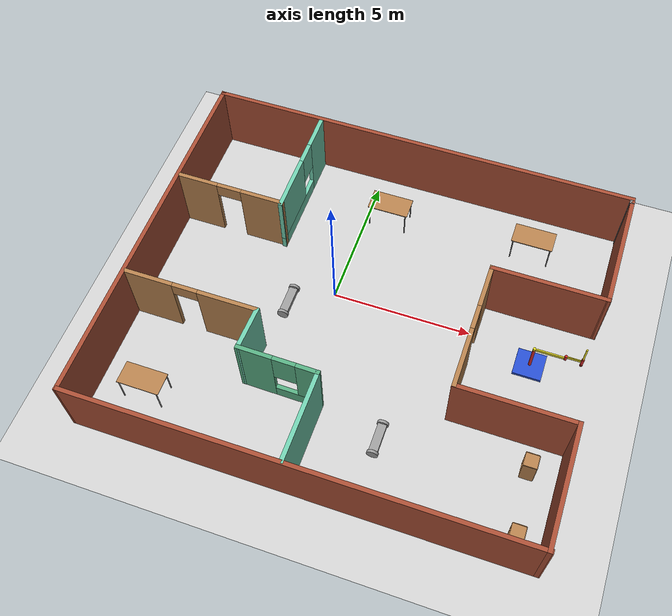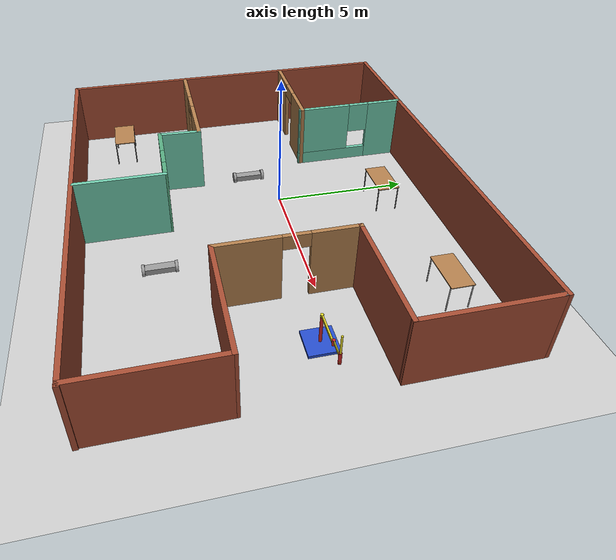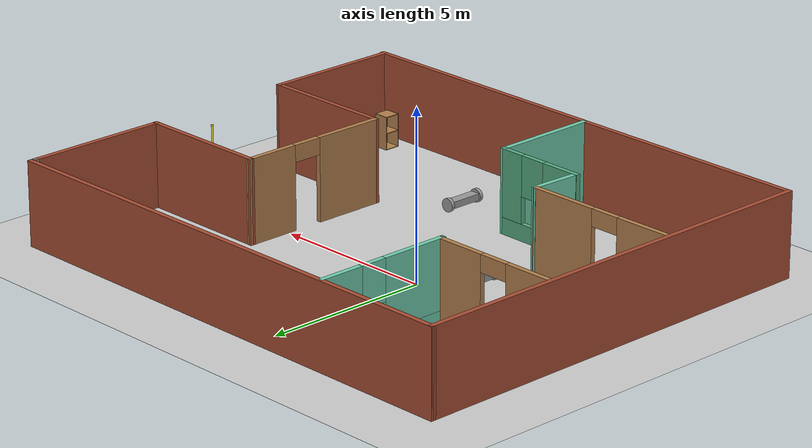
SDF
<sdf version="1.6">
 <world name="default">
  <plugin name="Welcome" filename="libWelcome.so"/>
  <light name="sun" type="directional">
   <pose>0 0 10 0 -0 0</pose>
   <diffuse>0.8 0.8 0.8 1</diffuse>
   <specular>0.2 0.2 0.2 1</specular>
   <attenuation>
    <range>1000</range>
    <constant>0.9</constant>
    <linear>0.01</linear>
    <quadratic>0.001</quadratic>
   </attenuation>
   <direction>-0.5 0.1 -0.9</direction>
  </light>
  <model name="ground_plane">
   <static>1</static>
   <link name="link">
    <collision name="collision">
     <geometry><plane><normal>0 0 1</normal><size>100 100</size></plane></geometry>
     <surface><friction><ode><mu>100</mu><mu2>50</mu2></ode></friction></surface>
    </collision>
    <visual name="visual">
     <cast_shadows>0</cast_shadows>
     <geometry><plane><normal>0 0 1</normal><size>100 100</size></plane></geometry>
     <material>
      <script><uri>file://media/materials/scripts/gazebo.material</uri><name>Gazebo/Grey</name></script>
     </material>
    </visual>
   </link>
  </model>
  <gravity>0 0 -9.8</gravity>
  <magnetic_field>6e-06 2.3e-05 -4.2e-05</magnetic_field>
  <atmosphere type="adiabatic"/>
  <physics name="default_physics" default="0" type="ode">
   <max_step_size>0.001</max_step_size>
   <real_time_factor>1</real_time_factor>
   <real_time_update_rate>1000</real_time_update_rate>
  </physics>
  <scene><ambient>0.4 0.4 0.4 1</ambient><background>0.7 0.7 0.7 1</background><shadows>1</shadows></scene>
  <spherical_coordinates>
   <surface_model>EARTH_WGS84</surface_model>
   <latitude_deg>0</latitude_deg>
   <longitude_deg>0</longitude_deg>
   <elevation>0</elevation>
   <heading_deg>0</heading_deg>
  </spherical_coordinates>
  <model name="robot">
   <link name="link_0">
    <inertial>
     <mass>1</mass>
     <inertia>
      <ixx>0.166667</ixx>
      <ixy>0</ixy>
      <ixz>0</ixz>
      <iyy>0.166667</iyy>
      <iyz>0</iyz>
      <izz>0.166667</izz>
     </inertia>
    </inertial>
    <visual name="visual">
     <geometry><box><size>0.3 1 0.2</size></box></geometry>
     <material>
      <lighting>1</lighting>
      <script><uri>file://media/materials/scripts/gazebo.material</uri><name>Gazebo/Grey</name></script>
      <ambient>0.3 0.3 0.3 1</ambient>
      <diffuse>0.7 0.7 0.7 1</diffuse>
      <specular>0.01 0.01 0.01 1</specular>
      <emissive>0 0 0 1</emissive>
      <shader type="vertex"><normal_map>__default__</normal_map></shader>
     </material>
    </visual>
    <collision name="collision">
     <geometry><box><size>0.3 1 0.2</size></box></geometry>
     <surface>
      <friction>
       <ode><mu>1</mu><mu2>1</mu2><fdir1>0 0 0</fdir1><slip1>0</slip1><slip2>0</slip2></ode>
       <torsional>
        <coefficient>1</coefficient>
        <patch_radius>0</patch_radius>
        <surface_radius>0</surface_radius>
        <use_patch_radius>1</use_patch_radius>
        <ode><slip>0</slip></ode>
       </torsional>
      </friction>
      <bounce><restitution_coefficient>0</restitution_coefficient><threshold>1e+06</threshold></bounce>
      <contact>
       <collide_without_contact>0</collide_without_contact>
       <collide_without_contact_bitmask>1</collide_without_contact_bitmask>
       <collide_bitmask>1</collide_bitmask>
       <ode>
        <soft_cfm>0</soft_cfm>
        <soft_erp>0.2</soft_erp>
        <kp>1e+13</kp>
        <kd>1</kd>
        <max_vel>0.01</max_vel>
        <min_depth>0</min_depth>
       </ode>
       <bullet>
        <split_impulse>1</split_impulse>
        <split_impulse_penetration_threshold>-0.01</split_impulse_penetration_threshold>
        <soft_cfm>0</soft_cfm>
        <soft_erp>0.2</soft_erp>
        <kp>1e+13</kp>
        <kd>1</kd>
       </bullet>
      </contact>
     </surface>
    </collision>
   </link>
   <link name="link_1">
    <pose>0 -0.550019 0 1.5707 -0 0</pose>
    <inertial>
     <mass>1</mass>
     <inertia><ixx>0.145833</ixx><ixy>0</ixy><ixz>0</ixz><iyy>0.145833</iyy><iyz>0</iyz><izz>0.125</izz></inertia>
    </inertial>
    <visual name="visual">
     <geometry><cylinder><radius>0.2</radius><length>0.1</length></cylinder></geometry>
     <material>
      <lighting>1</lighting>
      <script><uri>file://media/materials/scripts/gazebo.material</uri><name>Gazebo/Grey</name></script>
      <ambient>0.3 0.3 0.3 1</ambient>
      <diffuse>0.7 0.7 0.7 1</diffuse>
      <specular>0.01 0.01 0.01 1</specular>
      <emissive>0 0 0 1</emissive>
      <shader type="vertex"><normal_map>__default__</normal_map></shader>
     </material>
    </visual>
    <collision name="collision">
     <geometry><cylinder><radius>0.2</radius><length>0.1</length></cylinder></geometry>
     <surface>
      <friction>
       <ode><mu>1</mu><mu2>1</mu2><fdir1>0 0 0</fdir1><slip1>0</slip1><slip2>0</slip2></ode>
       <torsional>
        <coefficient>1</coefficient>
        <patch_radius>0</patch_radius>
        <surface_radius>0</surface_radius>
        <use_patch_radius>1</use_patch_radius>
        <ode><slip>0</slip></ode>
       </torsional>
      </friction>
      <bounce><restitution_coefficient>0</restitution_coefficient><threshold>1e+06</threshold></bounce>
      <contact>
       <collide_without_contact>0</collide_without_contact>
       <collide_without_contact_bitmask>1</collide_without_contact_bitmask>
       <collide_bitmask>1</collide_bitmask>
       <ode>
        <soft_cfm>0</soft_cfm>
        <soft_erp>0.2</soft_erp>
        <kp>1e+13</kp>
        <kd>1</kd>
        <max_vel>0.01</max_vel>
        <min_depth>0</min_depth>
       </ode>
       <bullet>
        <split_impulse>1</split_impulse>
        <split_impulse_penetration_threshold>-0.01</split_impulse_penetration_threshold>
        <soft_cfm>0</soft_cfm>
        <soft_erp>0.2</soft_erp>
        <kp>1e+13</kp>
        <kd>1</kd>
       </bullet>
      </contact>
     </surface>
    </collision>
   </link>
   <link name="link_1_clone">
    <pose>0 0.550019 0 1.5707 -0 0</pose>
    <inertial>
     <mass>1</mass>
     <inertia><ixx>0.145833</ixx><ixy>0</ixy><ixz>0</ixz><iyy>0.145833</iyy><iyz>0</iyz><izz>0.125</izz></inertia>
    </inertial>
    <visual name="visual">
     <geometry><cylinder><radius>0.2</radius><length>0.1</length></cylinder></geometry>
     <material>
      <lighting>1</lighting>
      <script><uri>file://media/materials/scripts/gazebo.material</uri><name>Gazebo/Grey</name></script>
      <ambient>0.3 0.3 0.3 1</ambient>
      <diffuse>0.7 0.7 0.7 1</diffuse>
      <specular>0.01 0.01 0.01 1</specular>
      <emissive>0 0 0 1</emissive>
      <shader type="vertex"><normal_map>__default__</normal_map></shader>
     </material>
    </visual>
    <collision name="collision">
     <geometry><cylinder><radius>0.2</radius><length>0.1</length></cylinder></geometry>
     <surface>
      <friction>
       <ode><mu>1</mu><mu2>1</mu2><fdir1>0 0 0</fdir1><slip1>0</slip1><slip2>0</slip2></ode>
       <torsional>
        <coefficient>1</coefficient>
        <patch_radius>0</patch_radius>
        <surface_radius>0</surface_radius>
        <use_patch_radius>1</use_patch_radius>
        <ode><slip>0</slip></ode>
       </torsional>
      </friction>
      <bounce><restitution_coefficient>0</restitution_coefficient><threshold>1e+06</threshold></bounce>
      <contact>
       <collide_without_contact>0</collide_without_contact>
       <collide_without_contact_bitmask>1</collide_without_contact_bitmask>
       <collide_bitmask>1</collide_bitmask>
       <ode>
        <soft_cfm>0</soft_cfm>
        <soft_erp>0.2</soft_erp>
        <kp>1e+13</kp>
        <kd>1</kd>
        <max_vel>0.01</max_vel>
        <min_depth>0</min_depth>
       </ode>
       <bullet>
        <split_impulse>1</split_impulse>
        <split_impulse_penetration_threshold>-0.01</split_impulse_penetration_threshold>
        <soft_cfm>0</soft_cfm>
        <soft_erp>0.2</soft_erp>
        <kp>1e+13</kp>
        <kd>1</kd>
       </bullet>
      </contact>
     </surface>
    </collision>
   </link>
   <joint name="link_0_JOINT_0" type="revolute">
    <parent>link_0</parent>
    <child>link_1</child>
    <axis>
     <xyz>0 0 1</xyz>
     <use_parent_model_frame>0</use_parent_model_frame>
     <limit>
      <lower>-1.79769e+308</lower>
      <upper>1.79769e+308</upper>
      <effort>-1</effort>
      <velocity>-1</velocity>
     </limit>
     <dynamics>
      <spring_reference>0</spring_reference>
      <spring_stiffness>0</spring_stiffness>
      <damping>0</damping>
     </dynamics>
    </axis>
    <physics>
     <ode><limit><cfm>0</cfm><erp>0.2</erp></limit><suspension><cfm>0</cfm><erp>0.2</erp></suspension></ode>
    </physics>
   </joint>
   <joint name="link_0_JOINT_1" type="revolute">
    <parent>link_0</parent>
    <child>link_1_clone</child>
    <axis>
     <xyz>0 0 1</xyz>
     <use_parent_model_frame>0</use_parent_model_frame>
     <limit>
      <lower>-1.79769e+308</lower>
      <upper>1.79769e+308</upper>
      <effort>-1</effort>
      <velocity>-1</velocity>
     </limit>
     <dynamics>
      <spring_reference>0</spring_reference>
      <spring_stiffness>0</spring_stiffness>
      <damping>0</damping>
     </dynamics>
    </axis>
    <physics>
     <ode><limit><cfm>0</cfm><erp>0.2</erp></limit><suspension><cfm>0</cfm><erp>0.2</erp></suspension></ode>
    </physics>
   </joint>
   <static>0</static>
   <pose>-1.38684 -0.961373 0.345838 3e-06 -0.000182 6.4e-05</pose>
  </model>
  <model name="home">
   <pose>1.37057 -0.889233 0 0 -0 0</pose>
   <link name="Wall_23">
    <collision name="Wall_23_Collision">
     <geometry><box><size>15.75 0.15 2.5</size></box></geometry>
     <pose>0 0 1.25 0 -0 0</pose>
    </collision>
    <visual name="Wall_23_Visual">
     <pose>0 0 1.25 0 -0 0</pose>
     <geometry><box><size>15.75 0.15 2.5</size></box></geometry>
     <material>
      <script><uri>file://media/materials/scripts/gazebo.material</uri><name>Gazebo/Bricks</name></script>
      <ambient>1 1 1 1</ambient>
     </material>
     <meta><layer>0</layer></meta>
    </visual>
    <pose>-0.037313 6.55046 0 0 -0 3.14159</pose>
   </link>
   <link name="Wall_24">
    <collision name="Wall_24_Collision">
     <geometry><box><size>13.2375 0.15 2.5</size></box></geometry>
     <pose>0 0 1.25 0 -0 0</pose>
    </collision>
    <visual name="Wall_24_Visual">
     <pose>0 0 1.25 0 -0 0</pose>
     <geometry><box><size>13.2375 0.15 2.5</size></box></geometry>
     <material>
      <script><uri>file://media/materials/scripts/gazebo.material</uri><name>Gazebo/Bricks</name></script>
      <ambient>1 1 1 1</ambient>
     </material>
     <meta><layer>0</layer></meta>
    </visual>
    <pose>-7.81748 -0.006499 0 0 0 -1.56777</pose>
   </link>
   <link name="Wall_25">
    <collision name="Wall_25_Collision">
     <geometry><box><size>15.75 0.15 2.5</size></box></geometry>
     <pose>0 0 1.25 0 -0 0</pose>
    </collision>
    <visual name="Wall_25_Visual">
     <pose>0 0 1.25 0 -0 0</pose>
     <geometry><box><size>15.75 0.15 2.5</size></box></geometry>
     <material>
      <script><uri>file://media/materials/scripts/gazebo.material</uri><name>Gazebo/Bricks</name></script>
      <ambient>1 1 1 1</ambient>
     </material>
     <meta><layer>0</layer></meta>
    </visual>
    <pose>0.03754 -6.55023 0 0 -0 0</pose>
   </link>
   <link name="Wall_26">
    <collision name="Wall_26_Collision">
     <geometry><box><size>4.25 0.15 2.5</size></box></geometry>
     <pose>0 0 1.25 0 -0 0</pose>
    </collision>
    <visual name="Wall_26_Visual">
     <pose>0 0 1.25 0 -0 0</pose>
     <geometry><box><size>4.25 0.15 2.5</size></box></geometry>
     <material>
      <script><uri>file://media/materials/scripts/gazebo.material</uri><name>Gazebo/Bricks</name></script>
      <ambient>1 1 1 1</ambient>
     </material>
     <meta><layer>0</layer></meta>
    </visual>
    <pose>7.80236 -4.50023 0 0 -0 1.5708</pose>
   </link>
   <link name="Wall_27">
    <collision name="Wall_27_Collision">
     <geometry><box><size>4.13753 0.15 2.5</size></box></geometry>
     <pose>0 0 1.25 0 -0 0</pose>
    </collision>
    <visual name="Wall_27_Visual">
     <pose>0 0 1.25 0 -0 0</pose>
     <geometry><box><size>4.13753 0.15 2.5</size></box></geometry>
     <material>
      <script><uri>file://media/materials/scripts/gazebo.material</uri><name>Gazebo/Bricks</name></script>
      <ambient>1 1 1 1</ambient>
     </material>
     <meta><layer>0</layer></meta>
    </visual>
    <pose>5.8086 -2.44911 0 0 -0 3.14103</pose>
   </link>
   <link name="Wall_28">
    <pose>3.81484 -0.132789 0 0 -0 1.5708</pose>
    <visual name="Wall_28_Visual_0">
     <pose>-1.27524 0 1.25 0 -0 0</pose>
     <geometry><box><size>2.19953 0.15 2.5</size></box></geometry>
     <material>
      <script><uri>file://media/materials/scripts/gazebo.material</uri><name>Gazebo/Wood</name></script>
      <ambient>1 1 1 1</ambient>
     </material>
     <meta><layer>0</layer></meta>
    </visual>
    <collision name="Wall_28_Collision_0">
     <geometry><box><size>2.19953 0.15 2.5</size></box></geometry>
     <pose>-1.27524 0 1.25 0 -0 0</pose>
    </collision>
    <visual name="Wall_28_Visual_1">
     <pose>1.54976 0 1.25 0 -0 0</pose>
     <geometry><box><size>1.65047 0.15 2.5</size></box></geometry>
     <material>
      <script><uri>file://media/materials/scripts/gazebo.material</uri><name>Gazebo/Wood</name></script>
      <ambient>1 1 1 1</ambient>
     </material>
     <meta><layer>0</layer></meta>
    </visual>
    <collision name="Wall_28_Collision_1">
     <geometry><box><size>1.65047 0.15 2.5</size></box></geometry>
     <pose>1.54976 0 1.25 0 -0 0</pose>
    </collision>
    <visual name="Wall_28_Visual_2">
     <pose>0.274529 0 2.25 0 -0 0</pose>
     <geometry><box><size>0.9 0.15 0.5</size></box></geometry>
     <material>
      <script><uri>file://media/materials/scripts/gazebo.material</uri><name>Gazebo/Wood</name></script>
      <ambient>1 1 1 1</ambient>
     </material>
     <meta><layer>0</layer></meta>
    </visual>
    <collision name="Wall_28_Collision_2">
     <geometry><box><size>0.9 0.15 0.5</size></box></geometry>
     <pose>0.274529 0 2.25 0 -0 0</pose>
    </collision>
   </link>
   <link name="Wall_29">
    <collision name="Wall_29_Collision">
     <geometry><box><size>4.08506 0.15 2.5</size></box></geometry>
     <pose>0 0 1.25 0 -0 0</pose>
    </collision>
    <visual name="Wall_29_Visual">
     <pose>0 0 1.25 0 -0 0</pose>
     <geometry><box><size>4.08506 0.15 2.5</size></box></geometry>
     <material>
      <script><uri>file://media/materials/scripts/gazebo.material</uri><name>Gazebo/Bricks</name></script>
      <ambient>1 1 1 1</ambient>
     </material>
     <meta><layer>0</layer></meta>
    </visual>
    <pose>5.78236 2.16664 0 0 0 -0.00029</pose>
   </link>
   <link name="Wall_30">
    <collision name="Wall_30_Collision">
     <geometry><box><size>4.40163 0.15 2.5</size></box></geometry>
     <pose>0 0 1.25 0 -0 0</pose>
    </collision>
    <visual name="Wall_30_Visual">
     <pose>0 0 1.25 0 -0 0</pose>
     <geometry><box><size>4.40163 0.15 2.5</size></box></geometry>
     <material>
      <script><uri>file://media/materials/scripts/gazebo.material</uri><name>Gazebo/Bricks</name></script>
      <ambient>1 1 1 1</ambient>
     </material>
     <meta><layer>0</layer></meta>
    </visual>
    <pose>7.76738 4.29189 0 0 -0 1.5708</pose>
   </link>
   <link name="Wall_31">
    <collision name="Wall_31_Collision">
     <geometry><box><size>0.15 0.15 2.5</size></box></geometry>
     <pose>0 0 1.25 0 -0 0</pose>
    </collision>
    <visual name="Wall_31_Visual">
     <pose>0 0 1.25 0 -0 0</pose>
     <geometry><box><size>0.15 0.15 2.5</size></box></geometry>
     <material>
      <script><uri>file://media/materials/scripts/gazebo.material</uri><name>Gazebo/Grey</name></script>
      <ambient>1 1 1 1</ambient>
     </material>
     <meta><layer>0</layer></meta>
    </visual>
    <pose>7.74989 6.4177 0 0 -0 0</pose>
   </link>
   <link name="Wall_32">
    <collision name="Wall_32_Collision">
     <geometry><box><size>0.15 0.15 2.5</size></box></geometry>
     <pose>0 0 1.25 0 -0 0</pose>
    </collision>
    <visual name="Wall_32_Visual">
     <pose>0 0 1.25 0 -0 0</pose>
     <geometry><box><size>0.15 0.15 2.5</size></box></geometry>
     <material>
      <script><uri>file://media/materials/scripts/gazebo.material</uri><name>Gazebo/Grey</name></script>
      <ambient>1 1 1 1</ambient>
     </material>
     <meta><layer>0</layer></meta>
    </visual>
    <pose>7.74989 6.4177 0 0 -0 0</pose>
   </link>
   <link name="Wall_33">
    <collision name="Wall_33_Collision">
     <geometry><box><size>0.15 0.15 2.5</size></box></geometry>
     <pose>0 0 1.25 0 -0 0</pose>
    </collision>
    <visual name="Wall_33_Visual">
     <pose>0 0 1.25 0 -0 0</pose>
     <geometry><box><size>0.15 0.15 2.5</size></box></geometry>
     <material>
      <script><uri>file://media/materials/scripts/gazebo.material</uri><name>Gazebo/Grey</name></script>
      <ambient>1 1 1 1</ambient>
     </material>
     <meta><layer>0</layer></meta>
    </visual>
    <pose>7.74989 6.4177 0 0 -0 0</pose>
   </link>
   <link name="Wall_34">
    <collision name="Wall_34_Collision">
     <geometry><box><size>0.15 0.15 2.5</size></box></geometry>
     <pose>0 0 1.25 0 -0 0</pose>
    </collision>
    <visual name="Wall_34_Visual">
     <pose>0 0 1.25 0 -0 0</pose>
     <geometry><box><size>0.15 0.15 2.5</size></box></geometry>
     <material>
      <script><uri>file://media/materials/scripts/gazebo.material</uri><name>Gazebo/Grey</name></script>
      <ambient>1 1 1 1</ambient>
     </material>
     <meta><layer>0</layer></meta>
    </visual>
    <pose>7.74989 6.4177 0 0 -0 0</pose>
   </link>
   <link name="Wall_39">
    <pose>-3.85623 4.42512 0 0 0 -1.5708</pose>
    <visual name="Wall_39_Visual_0">
     <pose>-1.45304 0 1.25 0 -0 0</pose>
     <geometry><box><size>1.36241 0.15 2.5</size></box></geometry>
     <material>
      <script><uri>file://media/materials/scripts/gazebo.material</uri><name>Gazebo/Grey</name></script>
      <ambient>0.435294 0.796078 0.67451 1</ambient>
     </material>
     <meta><layer>0</layer></meta>
    </visual>
    <collision name="Wall_39_Collision_0">
     <geometry><box><size>1.36241 0.15 2.5</size></box></geometry>
     <pose>-1.45304 0 1.25 0 -0 0</pose>
    </collision>
    <visual name="Wall_39_Visual_1">
     <pose>0.681203 0 0.25 0 -0 0</pose>
     <geometry><box><size>2.90607 0.15 0.5</size></box></geometry>
     <material>
      <script><uri>file://media/materials/scripts/gazebo.material</uri><name>Gazebo/Grey</name></script>
      <ambient>0.435294 0.796078 0.67451 1</ambient>
     </material>
     <meta><layer>0</layer></meta>
    </visual>
    <collision name="Wall_39_Collision_1">
     <geometry><box><size>2.90607 0.15 0.5</size></box></geometry>
     <pose>0.681203 0 0.25 0 -0 0</pose>
    </collision>
    <visual name="Wall_39_Visual_2">
     <pose>1.0812 0 1.5 0 -0 0</pose>
     <geometry><box><size>2.10607 0.15 2</size></box></geometry>
     <material>
      <script><uri>file://media/materials/scripts/gazebo.material</uri><name>Gazebo/Grey</name></script>
      <ambient>0.435294 0.796078 0.67451 1</ambient>
     </material>
     <meta><layer>0</layer></meta>
    </visual>
    <collision name="Wall_39_Collision_2">
     <geometry><box><size>2.10607 0.15 2</size></box></geometry>
     <pose>1.0812 0 1.5 0 -0 0</pose>
    </collision>
    <visual name="Wall_39_Visual_3">
     <pose>-0.371833 0 1.9 0 -0 0</pose>
     <geometry><box><size>0.8 0.15 1.2</size></box></geometry>
     <material>
      <script><uri>file://media/materials/scripts/gazebo.material</uri><name>Gazebo/Grey</name></script>
      <ambient>0.435294 0.796078 0.67451 1</ambient>
     </material>
     <meta><layer>0</layer></meta>
    </visual>
    <collision name="Wall_39_Collision_3">
     <geometry><box><size>0.8 0.15 1.2</size></box></geometry>
     <pose>-0.371833 0 1.9 0 -0 0</pose>
    </collision>
   </link>
   <link name="Wall_40">
    <pose>-5.78123 2.41938 0 0 -0 3.14159</pose>
    <visual name="Wall_40_Visual_0">
     <pose>-1.19622 0 1.25 0 -0 0</pose>
     <geometry><box><size>1.60755 0.15 2.5</size></box></geometry>
     <material>
      <script><uri>file://media/materials/scripts/gazebo.material</uri><name>Gazebo/Wood</name></script>
      <ambient>1 1 1 1</ambient>
     </material>
     <meta><layer>0</layer></meta>
    </visual>
    <collision name="Wall_40_Collision_0">
     <geometry><box><size>1.60755 0.15 2.5</size></box></geometry>
     <pose>-1.19622 0 1.25 0 -0 0</pose>
    </collision>
    <visual name="Wall_40_Visual_1">
     <pose>1.25378 0 1.25 0 -0 0</pose>
     <geometry><box><size>1.49245 0.15 2.5</size></box></geometry>
     <material>
      <script><uri>file://media/materials/scripts/gazebo.material</uri><name>Gazebo/Wood</name></script>
      <ambient>1 1 1 1</ambient>
     </material>
     <meta><layer>0</layer></meta>
    </visual>
    <collision name="Wall_40_Collision_1">
     <geometry><box><size>1.49245 0.15 2.5</size></box></geometry>
     <pose>1.25378 0 1.25 0 -0 0</pose>
    </collision>
    <visual name="Wall_40_Visual_2">
     <pose>0.057554 0 2.25 0 -0 0</pose>
     <geometry><box><size>0.9 0.15 0.5</size></box></geometry>
     <material>
      <script><uri>file://media/materials/scripts/gazebo.material</uri><name>Gazebo/Wood</name></script>
      <ambient>1 1 1 1</ambient>
     </material>
     <meta><layer>0</layer></meta>
    </visual>
    <collision name="Wall_40_Collision_2">
     <geometry><box><size>0.9 0.15 0.5</size></box></geometry>
     <pose>0.057554 0 2.25 0 -0 0</pose>
    </collision>
   </link>
   <link name="Wall_42">
    <pose>-5.38319 -1.91112 0 0 -0 0.001113</pose>
    <visual name="Wall_42_Visual_0">
     <pose>-1.52107 0 1.25 0 -0 0</pose>
     <geometry><box><size>1.76268 0.15 2.5</size></box></geometry>
     <material>
      <script><uri>file://media/materials/scripts/gazebo.material</uri><name>Gazebo/Wood</name></script>
      <ambient>1 1 1 1</ambient>
     </material>
     <meta><layer>0</layer></meta>
    </visual>
    <collision name="Wall_42_Collision_0">
     <geometry><box><size>1.76268 0.15 2.5</size></box></geometry>
     <pose>-1.52107 0 1.25 0 -0 0</pose>
    </collision>
    <visual name="Wall_42_Visual_1">
     <pose>1.33134 0 1.25 0 -0 0</pose>
     <geometry><box><size>2.14214 0.15 2.5</size></box></geometry>
     <material>
      <script><uri>file://media/materials/scripts/gazebo.material</uri><name>Gazebo/Wood</name></script>
      <ambient>1 1 1 1</ambient>
     </material>
     <meta><layer>0</layer></meta>
    </visual>
    <collision name="Wall_42_Collision_1">
     <geometry><box><size>2.14214 0.15 2.5</size></box></geometry>
     <pose>1.33134 0 1.25 0 -0 0</pose>
    </collision>
    <visual name="Wall_42_Visual_2">
     <pose>-0.189731 0 2.25 0 -0 0</pose>
     <geometry><box><size>0.9 0.15 0.5</size></box></geometry>
     <material>
      <script><uri>file://media/materials/scripts/gazebo.material</uri><name>Gazebo/Wood</name></script>
      <ambient>1 1 1 1</ambient>
     </material>
     <meta><layer>0</layer></meta>
    </visual>
    <collision name="Wall_42_Collision_2">
     <geometry><box><size>0.9 0.15 0.5</size></box></geometry>
     <pose>-0.189731 0 2.25 0 -0 0</pose>
    </collision>
   </link>
   <link name="Wall_43">
    <collision name="Wall_43_Collision">
     <geometry><box><size>1.62245 0.15 2.5</size></box></geometry>
     <pose>0 0 1.25 0 -0 0</pose>
    </collision>
    <visual name="Wall_43_Visual">
     <pose>0 0 1.25 0 -0 0</pose>
     <geometry><box><size>1.62245 0.15 2.5</size></box></geometry>
     <material>
      <script><uri>file://media/materials/scripts/gazebo.material</uri><name>Gazebo/Grey</name></script>
      <ambient>0.435294 0.796078 0.67451 1</ambient>
     </material>
     <meta><layer>0</layer></meta>
    </visual>
    <pose>-3.03144 -2.64435 0 0 0 -1.61041</pose>
   </link>
   <link name="Wall_44">
    <pose>-1.7001 -3.39451 0 0 0 -0.010464</pose>
    <visual name="Wall_44_Visual_0">
     <pose>-0.811214 0 1.25 0 -0 0</pose>
     <geometry><box><size>1.26872 0.15 2.5</size></box></geometry>
     <material>
      <script><uri>file://media/materials/scripts/gazebo.material</uri><name>Gazebo/Grey</name></script>
      <ambient>0.333333 0.666667 0.498039 1</ambient>
     </material>
     <meta><layer>0</layer></meta>
    </visual>
    <collision name="Wall_44_Collision_0">
     <geometry><box><size>1.26872 0.15 2.5</size></box></geometry>
     <pose>-0.811214 0 1.25 0 -0 0</pose>
    </collision>
    <visual name="Wall_44_Visual_1">
     <pose>0.634361 0 0.25 0 -0 0</pose>
     <geometry><box><size>1.62243 0.15 0.5</size></box></geometry>
     <material>
      <script><uri>file://media/materials/scripts/gazebo.material</uri><name>Gazebo/Grey</name></script>
      <ambient>0.333333 0.666667 0.498039 1</ambient>
     </material>
     <meta><layer>0</layer></meta>
    </visual>
    <collision name="Wall_44_Collision_1">
     <geometry><box><size>1.62243 0.15 0.5</size></box></geometry>
     <pose>0.634361 0 0.25 0 -0 0</pose>
    </collision>
    <visual name="Wall_44_Visual_2">
     <pose>1.03436 0 1.5 0 -0 0</pose>
     <geometry><box><size>0.822428 0.15 2</size></box></geometry>
     <material>
      <script><uri>file://media/materials/scripts/gazebo.material</uri><name>Gazebo/Grey</name></script>
      <ambient>0.333333 0.666667 0.498039 1</ambient>
     </material>
     <meta><layer>0</layer></meta>
    </visual>
    <collision name="Wall_44_Collision_2">
     <geometry><box><size>0.822428 0.15 2</size></box></geometry>
     <pose>1.03436 0 1.5 0 -0 0</pose>
    </collision>
    <visual name="Wall_44_Visual_3">
     <pose>0.223147 0 1.9 0 -0 0</pose>
     <geometry><box><size>0.8 0.15 1.2</size></box></geometry>
     <material>
      <script><uri>file://media/materials/scripts/gazebo.material</uri><name>Gazebo/Grey</name></script>
      <ambient>0.333333 0.666667 0.498039 1</ambient>
     </material>
     <meta><layer>0</layer></meta>
    </visual>
    <collision name="Wall_44_Collision_3">
     <geometry><box><size>0.8 0.15 1.2</size></box></geometry>
     <pose>0.223147 0 1.9 0 -0 0</pose>
    </collision>
   </link>
   <link name="Wall_48">
    <collision name="Wall_48_Collision">
     <geometry><box><size>3.25 0.15 2.5</size></box></geometry>
     <pose>0 0 1.25 0 -0 0</pose>
    </collision>
    <visual name="Wall_48_Visual">
     <pose>0 0 1.25 0 -0 0</pose>
     <geometry><box><size>3.25 0.15 2.5</size></box></geometry>
     <material>
      <script><uri>file://media/materials/scripts/gazebo.material</uri><name>Gazebo/Grey</name></script>
      <ambient>0.435294 0.796078 0.67451 1</ambient>
     </material>
     <meta><layer>0</layer></meta>
    </visual>
    <pose>-0.329601 -4.95885 0 0 0 -1.5708</pose>
   </link>
   <static>1</static>
  </model>
  <model name="robot_0">
   <link name="link_0">
    <inertial>
     <mass>1</mass>
     <inertia>
      <ixx>0.166667</ixx>
      <ixy>0</ixy>
      <ixz>0</ixz>
      <iyy>0.166667</iyy>
      <iyz>0</iyz>
      <izz>0.166667</izz>
     </inertia>
    </inertial>
    <visual name="visual">
     <geometry><box><size>0.3 1 0.2</size></box></geometry>
     <material>
      <lighting>1</lighting>
      <script><uri>file://media/materials/scripts/gazebo.material</uri><name>Gazebo/Grey</name></script>
      <ambient>0.3 0.3 0.3 1</ambient>
      <diffuse>0.7 0.7 0.7 1</diffuse>
      <specular>0.01 0.01 0.01 1</specular>
      <emissive>0 0 0 1</emissive>
      <shader type="vertex"><normal_map>__default__</normal_map></shader>
     </material>
    </visual>
    <collision name="collision">
     <geometry><box><size>0.3 1 0.2</size></box></geometry>
     <surface>
      <friction>
       <ode><mu>1</mu><mu2>1</mu2><fdir1>0 0 0</fdir1><slip1>0</slip1><slip2>0</slip2></ode>
       <torsional>
        <coefficient>1</coefficient>
        <patch_radius>0</patch_radius>
        <surface_radius>0</surface_radius>
        <use_patch_radius>1</use_patch_radius>
        <ode><slip>0</slip></ode>
       </torsional>
      </friction>
      <bounce><restitution_coefficient>0</restitution_coefficient><threshold>1e+06</threshold></bounce>
      <contact>
       <collide_without_contact>0</collide_without_contact>
       <collide_without_contact_bitmask>1</collide_without_contact_bitmask>
       <collide_bitmask>1</collide_bitmask>
       <ode>
        <soft_cfm>0</soft_cfm>
        <soft_erp>0.2</soft_erp>
        <kp>1e+13</kp>
        <kd>1</kd>
        <max_vel>0.01</max_vel>
        <min_depth>0</min_depth>
       </ode>
       <bullet>
        <split_impulse>1</split_impulse>
        <split_impulse_penetration_threshold>-0.01</split_impulse_penetration_threshold>
        <soft_cfm>0</soft_cfm>
        <soft_erp>0.2</soft_erp>
        <kp>1e+13</kp>
        <kd>1</kd>
       </bullet>
      </contact>
     </surface>
    </collision>
   </link>
   <link name="link_1">
    <pose>0 -0.550019 0 1.5707 -0 0</pose>
    <inertial>
     <mass>1</mass>
     <inertia><ixx>0.145833</ixx><ixy>0</ixy><ixz>0</ixz><iyy>0.145833</iyy><iyz>0</iyz><izz>0.125</izz></inertia>
    </inertial>
    <visual name="visual">
     <geometry><cylinder><radius>0.2</radius><length>0.1</length></cylinder></geometry>
     <material>
      <lighting>1</lighting>
      <script><uri>file://media/materials/scripts/gazebo.material</uri><name>Gazebo/Grey</name></script>
      <ambient>0.3 0.3 0.3 1</ambient>
      <diffuse>0.7 0.7 0.7 1</diffuse>
      <specular>0.01 0.01 0.01 1</specular>
      <emissive>0 0 0 1</emissive>
      <shader type="vertex"><normal_map>__default__</normal_map></shader>
     </material>
    </visual>
    <collision name="collision">
     <geometry><cylinder><radius>0.2</radius><length>0.1</length></cylinder></geometry>
     <surface>
      <friction>
       <ode><mu>1</mu><mu2>1</mu2><fdir1>0 0 0</fdir1><slip1>0</slip1><slip2>0</slip2></ode>
       <torsional>
        <coefficient>1</coefficient>
        <patch_radius>0</patch_radius>
        <surface_radius>0</surface_radius>
        <use_patch_radius>1</use_patch_radius>
        <ode><slip>0</slip></ode>
       </torsional>
      </friction>
      <bounce><restitution_coefficient>0</restitution_coefficient><threshold>1e+06</threshold></bounce>
      <contact>
       <collide_without_contact>0</collide_without_contact>
       <collide_without_contact_bitmask>1</collide_without_contact_bitmask>
       <collide_bitmask>1</collide_bitmask>
       <ode>
        <soft_cfm>0</soft_cfm>
        <soft_erp>0.2</soft_erp>
        <kp>1e+13</kp>
        <kd>1</kd>
        <max_vel>0.01</max_vel>
        <min_depth>0</min_depth>
       </ode>
       <bullet>
        <split_impulse>1</split_impulse>
        <split_impulse_penetration_threshold>-0.01</split_impulse_penetration_threshold>
        <soft_cfm>0</soft_cfm>
        <soft_erp>0.2</soft_erp>
        <kp>1e+13</kp>
        <kd>1</kd>
       </bullet>
      </contact>
     </surface>
    </collision>
   </link>
   <link name="link_1_clone">
    <pose>0 0.550019 0 1.5707 -0 0</pose>
    <inertial>
     <mass>1</mass>
     <inertia><ixx>0.145833</ixx><ixy>0</ixy><ixz>0</ixz><iyy>0.145833</iyy><iyz>0</iyz><izz>0.125</izz></inertia>
    </inertial>
    <visual name="visual">
     <geometry><cylinder><radius>0.2</radius><length>0.1</length></cylinder></geometry>
     <material>
      <lighting>1</lighting>
      <script><uri>file://media/materials/scripts/gazebo.material</uri><name>Gazebo/Grey</name></script>
      <ambient>0.3 0.3 0.3 1</ambient>
      <diffuse>0.7 0.7 0.7 1</diffuse>
      <specular>0.01 0.01 0.01 1</specular>
      <emissive>0 0 0 1</emissive>
      <shader type="vertex"><normal_map>__default__</normal_map></shader>
     </material>
    </visual>
    <collision name="collision">
     <geometry><cylinder><radius>0.2</radius><length>0.1</length></cylinder></geometry>
     <surface>
      <friction>
       <ode><mu>1</mu><mu2>1</mu2><fdir1>0 0 0</fdir1><slip1>0</slip1><slip2>0</slip2></ode>
       <torsional>
        <coefficient>1</coefficient>
        <patch_radius>0</patch_radius>
        <surface_radius>0</surface_radius>
        <use_patch_radius>1</use_patch_radius>
        <ode><slip>0</slip></ode>
       </torsional>
      </friction>
      <bounce><restitution_coefficient>0</restitution_coefficient><threshold>1e+06</threshold></bounce>
      <contact>
       <collide_without_contact>0</collide_without_contact>
       <collide_without_contact_bitmask>1</collide_without_contact_bitmask>
       <collide_bitmask>1</collide_bitmask>
       <ode>
        <soft_cfm>0</soft_cfm>
        <soft_erp>0.2</soft_erp>
        <kp>1e+13</kp>
        <kd>1</kd>
        <max_vel>0.01</max_vel>
        <min_depth>0</min_depth>
       </ode>
       <bullet>
        <split_impulse>1</split_impulse>
        <split_impulse_penetration_threshold>-0.01</split_impulse_penetration_threshold>
        <soft_cfm>0</soft_cfm>
        <soft_erp>0.2</soft_erp>
        <kp>1e+13</kp>
        <kd>1</kd>
       </bullet>
      </contact>
     </surface>
    </collision>
   </link>
   <joint name="link_0_JOINT_0" type="revolute">
    <parent>link_0</parent>
    <child>link_1</child>
    <axis>
     <xyz>0 0 1</xyz>
     <use_parent_model_frame>0</use_parent_model_frame>
     <limit>
      <lower>-1.79769e+308</lower>
      <upper>1.79769e+308</upper>
      <effort>-1</effort>
      <velocity>-1</velocity>
     </limit>
     <dynamics>
      <spring_reference>0</spring_reference>
      <spring_stiffness>0</spring_stiffness>
      <damping>0</damping>
     </dynamics>
    </axis>
    <physics>
     <ode><limit><cfm>0</cfm><erp>0.2</erp></limit><suspension><cfm>0</cfm><erp>0.2</erp></suspension></ode>
    </physics>
   </joint>
   <joint name="link_0_JOINT_1" type="revolute">
    <parent>link_0</parent>
    <child>link_1_clone</child>
    <axis>
     <xyz>0 0 1</xyz>
     <use_parent_model_frame>0</use_parent_model_frame>
     <limit>
      <lower>-1.79769e+308</lower>
      <upper>1.79769e+308</upper>
      <effort>-1</effort>
      <velocity>-1</velocity>
     </limit>
     <dynamics>
      <spring_reference>0</spring_reference>
      <spring_stiffness>0</spring_stiffness>
      <damping>0</damping>
     </dynamics>
    </axis>
    <physics>
     <ode><limit><cfm>0</cfm><erp>0.2</erp></limit><suspension><cfm>0</cfm><erp>0.2</erp></suspension></ode>
    </physics>
   </joint>
   <static>0</static>
   <pose>3.24026 -4.86559 0.210851 0 -0 0</pose>
  </model>
  <model name="simple_arm">
   <link name="arm_base">
    <inertial>
     <pose>0 0 0.00099 0 -0 0</pose>
     <inertia><ixx>1.11</ixx><ixy>0</ixy><ixz>0</ixz><iyy>100.11</iyy><iyz>0</iyz><izz>1.01</izz></inertia>
     <mass>101</mass>
    </inertial>
    <collision name="arm_base_geom">
     <pose>0 0 0.05 0 -0 0</pose>
     <geometry><box><size>1 1 0.1</size></box></geometry>
    </collision>
    <visual name="arm_base_geom_visual">
     <pose>0 0 0.05 0 -0 0</pose>
     <geometry><box><size>1 1 0.1</size></box></geometry>
     <material>
      <script><uri>file://media/materials/scripts/gazebo.material</uri><name>Gazebo/Blue</name></script>
     </material>
    </visual>
    <collision name="arm_base_geom_arm_trunk">
     <pose>0 0 0.6 0 -0 0</pose>
     <geometry><cylinder><radius>0.05</radius><length>1</length></cylinder></geometry>
    </collision>
    <visual name="arm_base_geom_arm_trunk_visual">
     <pose>0 0 0.6 0 -0 0</pose>
     <geometry><cylinder><radius>0.05</radius><length>1</length></cylinder></geometry>
     <material>
      <script><uri>file://media/materials/scripts/gazebo.material</uri><name>Gazebo/Red</name></script>
     </material>
    </visual>
   </link>
   <link name="arm_shoulder_pan">
    <pose>0 0 1.1 0 -0 0</pose>
    <inertial>
     <pose>0.045455 0 0 0 -0 0</pose>
     <inertia><ixx>0.011</ixx><ixy>0</ixy><ixz>0</ixz><iyy>0.0225</iyy><iyz>0</iyz><izz>0.0135</izz></inertia>
     <mass>1.1</mass>
    </inertial>
    <collision name="arm_shoulder_pan_geom">
     <pose>0 0 0.05 0 -0 0</pose>
     <geometry><cylinder><radius>0.05</radius><length>0.1</length></cylinder></geometry>
    </collision>
    <visual name="arm_shoulder_pan_geom_visual">
     <pose>0 0 0.05 0 -0 0</pose>
     <geometry><cylinder><radius>0.05</radius><length>0.1</length></cylinder></geometry>
     <material>
      <script><uri>file://media/materials/scripts/gazebo.material</uri><name>Gazebo/Yellow</name></script>
     </material>
    </visual>
    <collision name="arm_shoulder_pan_geom_arm_shoulder">
     <pose>0.55 0 0.05 0 -0 0</pose>
     <geometry><box><size>1 0.05 0.1</size></box></geometry>
    </collision>
    <visual name="arm_shoulder_pan_geom_arm_shoulder_visual">
     <pose>0.55 0 0.05 0 -0 0</pose>
     <geometry><box><size>1 0.05 0.1</size></box></geometry>
     <material>
      <script><uri>file://media/materials/scripts/gazebo.material</uri><name>Gazebo/Yellow</name></script>
     </material>
    </visual>
   </link>
   <link name="arm_elbow_pan">
    <pose>1.05 0 1.1 0 -0 0</pose>
    <inertial>
     <pose>0.0875 0 0.083333 0 -0 0</pose>
     <inertia>
      <ixx>0.031</ixx>
      <ixy>0</ixy>
      <ixz>0.005</ixz>
      <iyy>0.07275</iyy>
      <iyz>0</iyz>
      <izz>0.04475</izz>
     </inertia>
     <mass>1.2</mass>
    </inertial>
    <collision name="arm_elbow_pan_geom">
     <pose>0 0 0.1 0 -0 0</pose>
     <geometry><cylinder><radius>0.05</radius><length>0.2</length></cylinder></geometry>
    </collision>
    <visual name="arm_elbow_pan_geom_visual">
     <pose>0 0 0.1 0 -0 0</pose>
     <geometry><cylinder><radius>0.05</radius><length>0.2</length></cylinder></geometry>
     <material>
      <script><uri>file://media/materials/scripts/gazebo.material</uri><name>Gazebo/Red</name></script>
     </material>
    </visual>
    <collision name="arm_elbow_pan_geom_arm_elbow">
     <pose>0.3 0 0.15 0 -0 0</pose>
     <geometry><box><size>0.5 0.03 0.1</size></box></geometry>
    </collision>
    <visual name="arm_elbow_pan_geom_arm_elbow_visual">
     <pose>0.3 0 0.15 0 -0 0</pose>
     <geometry><box><size>0.5 0.03 0.1</size></box></geometry>
     <material>
      <script><uri>file://media/materials/scripts/gazebo.material</uri><name>Gazebo/Yellow</name></script>
     </material>
    </visual>
    <collision name="arm_elbow_pan_geom_arm_wrist">
     <pose>0.55 0 0.15 0 -0 0</pose>
     <geometry><cylinder><radius>0.05</radius><length>0.3</length></cylinder></geometry>
    </collision>
    <visual name="arm_elbow_pan_geom_arm_wrist_visual">
     <pose>0.55 0 0.15 0 -0 0</pose>
     <geometry><cylinder><radius>0.05</radius><length>0.3</length></cylinder></geometry>
     <material>
      <script><uri>file://media/materials/scripts/gazebo.material</uri><name>Gazebo/Red</name></script>
     </material>
    </visual>
   </link>
   <link name="arm_wrist_lift">
    <pose>1.6 0 1.05 0 -0 0</pose>
    <inertial>
     <inertia><ixx>0.01</ixx><ixy>0</ixy><ixz>0</ixz><iyy>0.01</iyy><iyz>0</iyz><izz>0.001</izz></inertia>
     <mass>0.1</mass>
    </inertial>
    <collision name="arm_wrist_lift_geom">
     <pose>0 0 0.5 0 -0 0</pose>
     <geometry><cylinder><radius>0.03</radius><length>1</length></cylinder></geometry>
    </collision>
    <visual name="arm_wrist_lift_geom_visual">
     <pose>0 0 0.5 0 -0 0</pose>
     <geometry><cylinder><radius>0.03</radius><length>1</length></cylinder></geometry>
     <material>
      <script><uri>file://media/materials/scripts/gazebo.material</uri><name>Gazebo/Yellow</name></script>
     </material>
    </visual>
   </link>
   <link name="arm_wrist_roll">
    <pose>1.6 0 1 0 -0 0</pose>
    <inertial>
     <inertia><ixx>0.01</ixx><ixy>0</ixy><ixz>0</ixz><iyy>0.01</iyy><iyz>0</iyz><izz>0.001</izz></inertia>
     <mass>0.1</mass>
    </inertial>
    <collision name="arm_wrist_roll_geom">
     <pose>0 0 0.025 0 -0 0</pose>
     <geometry><cylinder><radius>0.05</radius><length>0.05</length></cylinder></geometry>
    </collision>
    <visual name="arm_wrist_roll_geom_visual">
     <pose>0 0 0.025 0 -0 0</pose>
     <geometry><cylinder><radius>0.05</radius><length>0.05</length></cylinder></geometry>
     <material>
      <script><uri>file://media/materials/scripts/gazebo.material</uri><name>Gazebo/Red</name></script>
     </material>
    </visual>
   </link>
   <joint name="arm_shoulder_pan_joint" type="revolute">
    <parent>arm_base</parent>
    <child>arm_shoulder_pan</child>
    <axis>
     <dynamics>
      <damping>1</damping>
      <friction>0</friction>
      <spring_reference>0</spring_reference>
      <spring_stiffness>0</spring_stiffness>
     </dynamics>
     <xyz>0 0 1</xyz>
     <use_parent_model_frame>1</use_parent_model_frame>
     <limit><lower>-1e+16</lower><upper>1e+16</upper></limit>
    </axis>
   </joint>
   <joint name="arm_elbow_pan_joint" type="revolute">
    <parent>arm_shoulder_pan</parent>
    <child>arm_elbow_pan</child>
    <axis>
     <dynamics>
      <damping>1</damping>
      <friction>0</friction>
      <spring_reference>0</spring_reference>
      <spring_stiffness>0</spring_stiffness>
     </dynamics>
     <xyz>0 0 1</xyz>
     <use_parent_model_frame>1</use_parent_model_frame>
     <limit><lower>-1e+16</lower><upper>1e+16</upper></limit>
    </axis>
   </joint>
   <joint name="arm_wrist_lift_joint" type="prismatic">
    <parent>arm_elbow_pan</parent>
    <child>arm_wrist_lift</child>
    <axis>
     <dynamics>
      <damping>1</damping>
      <friction>0</friction>
      <spring_reference>0</spring_reference>
      <spring_stiffness>0</spring_stiffness>
     </dynamics>
     <limit><lower>-0.8</lower><upper>0.1</upper></limit>
     <xyz>0 0 1</xyz>
     <use_parent_model_frame>1</use_parent_model_frame>
    </axis>
   </joint>
   <joint name="arm_wrist_roll_joint" type="revolute">
    <parent>arm_wrist_lift</parent>
    <child>arm_wrist_roll</child>
    <axis>
     <dynamics>
      <damping>1</damping>
      <friction>0</friction>
      <spring_reference>0</spring_reference>
      <spring_stiffness>0</spring_stiffness>
     </dynamics>
     <limit><lower>-2.99999</lower><upper>2.99999</upper></limit>
     <xyz>0 0 1</xyz>
     <use_parent_model_frame>1</use_parent_model_frame>
    </axis>
   </joint>
   <pose>7.2844 -0.52655 0 0 -0 0</pose>
  </model>
  <model name="table">
   <static>1</static>
   <link name="link">
    <collision name="surface">
     <pose>0 0 1 0 -0 0</pose>
     <geometry><box><size>1.5 0.8 0.03</size></box></geometry>
     <surface><friction><ode><mu>0.6</mu><mu2>0.6</mu2></ode></friction></surface>
    </collision>
    <visual name="visual1">
     <pose>0 0 1 0 -0 0</pose>
     <geometry><box><size>1.5 0.8 0.03</size></box></geometry>
     <material>
      <script><uri>file://media/materials/scripts/gazebo.material</uri><name>Gazebo/Wood</name></script>
     </material>
    </visual>
    <collision name="front_left_leg">
     <pose>0.68 0.38 0.5 0 -0 0</pose>
     <geometry><cylinder><radius>0.02</radius><length>1</length></cylinder></geometry>
    </collision>
    <visual name="front_left_leg">
     <pose>0.68 0.38 0.5 0 -0 0</pose>
     <geometry><cylinder><radius>0.02</radius><length>1</length></cylinder></geometry>
     <material>
      <script><uri>file://media/materials/scripts/gazebo.material</uri><name>Gazebo/Grey</name></script>
     </material>
    </visual>
    <collision name="front_right_leg">
     <pose>0.68 -0.38 0.5 0 -0 0</pose>
     <geometry><cylinder><radius>0.02</radius><length>1</length></cylinder></geometry>
    </collision>
    <visual name="front_right_leg">
     <pose>0.68 -0.38 0.5 0 -0 0</pose>
     <geometry><cylinder><radius>0.02</radius><length>1</length></cylinder></geometry>
     <material>
      <script><uri>file://media/materials/scripts/gazebo.material</uri><name>Gazebo/Grey</name></script>
     </material>
    </visual>
    <collision name="back_right_leg">
     <pose>-0.68 -0.38 0.5 0 -0 0</pose>
     <geometry><cylinder><radius>0.02</radius><length>1</length></cylinder></geometry>
    </collision>
    <visual name="back_right_leg">
     <pose>-0.68 -0.38 0.5 0 -0 0</pose>
     <geometry><cylinder><radius>0.02</radius><length>1</length></cylinder></geometry>
     <material>
      <script><uri>file://media/materials/scripts/gazebo.material</uri><name>Gazebo/Grey</name></script>
     </material>
    </visual>
    <collision name="back_left_leg">
     <pose>-0.68 0.38 0.5 0 -0 0</pose>
     <geometry><cylinder><radius>0.02</radius><length>1</length></cylinder></geometry>
    </collision>
    <visual name="back_left_leg">
     <pose>-0.68 0.38 0.5 0 -0 0</pose>
     <geometry><cylinder><radius>0.02</radius><length>1</length></cylinder></geometry>
     <material>
      <script><uri>file://media/materials/scripts/gazebo.material</uri><name>Gazebo/Grey</name></script>
     </material>
    </visual>
   </link>
   <pose>6.20455 4.04653 0 0 -0 0</pose>
  </model>
  <model name="table_0">
   <static>1</static>
   <link name="link">
    <collision name="surface">
     <pose>0 0 1 0 -0 0</pose>
     <geometry><box><size>1.5 0.8 0.03</size></box></geometry>
     <surface><friction><ode><mu>0.6</mu><mu2>0.6</mu2></ode></friction></surface>
    </collision>
    <visual name="visual1">
     <pose>0 0 1 0 -0 0</pose>
     <geometry><box><size>1.5 0.8 0.03</size></box></geometry>
     <material>
      <script><uri>file://media/materials/scripts/gazebo.material</uri><name>Gazebo/Wood</name></script>
     </material>
    </visual>
    <collision name="front_left_leg">
     <pose>0.68 0.38 0.5 0 -0 0</pose>
     <geometry><cylinder><radius>0.02</radius><length>1</length></cylinder></geometry>
    </collision>
    <visual name="front_left_leg">
     <pose>0.68 0.38 0.5 0 -0 0</pose>
     <geometry><cylinder><radius>0.02</radius><length>1</length></cylinder></geometry>
     <material>
      <script><uri>file://media/materials/scripts/gazebo.material</uri><name>Gazebo/Grey</name></script>
     </material>
    </visual>
    <collision name="front_right_leg">
     <pose>0.68 -0.38 0.5 0 -0 0</pose>
     <geometry><cylinder><radius>0.02</radius><length>1</length></cylinder></geometry>
    </collision>
    <visual name="front_right_leg">
     <pose>0.68 -0.38 0.5 0 -0 0</pose>
     <geometry><cylinder><radius>0.02</radius><length>1</length></cylinder></geometry>
     <material>
      <script><uri>file://media/materials/scripts/gazebo.material</uri><name>Gazebo/Grey</name></script>
     </material>
    </visual>
    <collision name="back_right_leg">
     <pose>-0.68 -0.38 0.5 0 -0 0</pose>
     <geometry><cylinder><radius>0.02</radius><length>1</length></cylinder></geometry>
    </collision>
    <visual name="back_right_leg">
     <pose>-0.68 -0.38 0.5 0 -0 0</pose>
     <geometry><cylinder><radius>0.02</radius><length>1</length></cylinder></geometry>
     <material>
      <script><uri>file://media/materials/scripts/gazebo.material</uri><name>Gazebo/Grey</name></script>
     </material>
    </visual>
    <collision name="back_left_leg">
     <pose>-0.68 0.38 0.5 0 -0 0</pose>
     <geometry><cylinder><radius>0.02</radius><length>1</length></cylinder></geometry>
    </collision>
    <visual name="back_left_leg">
     <pose>-0.68 0.38 0.5 0 -0 0</pose>
     <geometry><cylinder><radius>0.02</radius><length>1</length></cylinder></geometry>
     <material>
      <script><uri>file://media/materials/scripts/gazebo.material</uri><name>Gazebo/Grey</name></script>
     </material>
    </visual>
   </link>
   <pose>-4.6706 -5.67602 0 0 -0 0</pose>
  </model>
  <model name="cabinet">
   <static>1</static>
   <link name="cabinet_bottom_plate">
    <inertial>
     <pose>0 0 -1 0 -0 0</pose>
     <inertia><ixx>2.05</ixx><ixy>0</ixy><ixz>0</ixz><iyy>2.05</iyy><iyz>0</iyz><izz>2.05</izz></inertia>
     <mass>25</mass>
    </inertial>
    <collision name="cabinet_bottom_plate_geom">
     <pose>0 0 0.01 0 -0 0</pose>
     <geometry><box><size>0.45 0.45 0.02</size></box></geometry>
    </collision>
    <visual name="cabinet_bottom_plate_geom_visual">
     <pose>0 0 0.01 0 -0 0</pose>
     <geometry><box><size>0.45 0.45 0.02</size></box></geometry>
     <material>
      <script><uri>file://media/materials/scripts/gazebo.material</uri><name>Gazebo/Wood</name></script>
     </material>
    </visual>
    <collision name="cabinet_bottom_plate_geom_cabinet_back_plate">
     <pose>0.235 0 0.51 0 -0 0</pose>
     <geometry><box><size>0.02 0.45 1.02</size></box></geometry>
    </collision>
    <visual name="cabinet_bottom_plate_geom_cabinet_back_plate_visual">
     <pose>0.235 0 0.51 0 -0 0</pose>
     <geometry><box><size>0.02 0.45 1.02</size></box></geometry>
     <material>
      <script><uri>file://media/materials/scripts/gazebo.material</uri><name>Gazebo/Wood</name></script>
     </material>
    </visual>
    <collision name="cabinet_bottom_plate_geom_cabinet_left_plate">
     <pose>0 0.235 0.51 0 -0 0</pose>
     <geometry><box><size>0.45 0.02 1.02</size></box></geometry>
    </collision>
    <visual name="cabinet_bottom_plate_geom_cabinet_left_plate_visual">
     <pose>0 0.235 0.51 0 -0 0</pose>
     <geometry><box><size>0.45 0.02 1.02</size></box></geometry>
     <material>
      <script><uri>file://media/materials/scripts/gazebo.material</uri><name>Gazebo/Wood</name></script>
     </material>
    </visual>
    <collision name="cabinet_bottom_plate_geom_cabinet_middle_plate">
     <pose>0 0 0.51 0 -0 0</pose>
     <geometry><box><size>0.45 0.45 0.02</size></box></geometry>
    </collision>
    <visual name="cabinet_bottom_plate_geom_cabinet_middle_plate_visual">
     <pose>0 0 0.51 0 -0 0</pose>
     <geometry><box><size>0.45 0.45 0.02</size></box></geometry>
     <material>
      <script><uri>file://media/materials/scripts/gazebo.material</uri><name>Gazebo/Wood</name></script>
     </material>
    </visual>
    <collision name="cabinet_bottom_plate_geom_cabinet_right_plate">
     <pose>0 -0.235 0.51 0 -0 0</pose>
     <geometry><box><size>0.45 0.02 1.02</size></box></geometry>
    </collision>
    <visual name="cabinet_bottom_plate_geom_cabinet_right_plate_visual">
     <pose>0 -0.235 0.51 0 -0 0</pose>
     <geometry><box><size>0.45 0.02 1.02</size></box></geometry>
     <material>
      <script><uri>file://media/materials/scripts/gazebo.material</uri><name>Gazebo/Wood</name></script>
     </material>
    </visual>
    <collision name="cabinet_bottom_plate_geom_cabinet_top_plate">
     <pose>0 0 1.01 0 -0 0</pose>
     <geometry><box><size>0.45 0.45 0.02</size></box></geometry>
    </collision>
    <visual name="cabinet_bottom_plate_geom_cabinet_top_plate_visual">
     <pose>0 0 1.01 0 -0 0</pose>
     <geometry><box><size>0.45 0.45 0.02</size></box></geometry>
     <material>
      <script><uri>file://media/materials/scripts/gazebo.material</uri><name>Gazebo/Wood</name></script>
     </material>
    </visual>
   </link>
   <pose>8.12419 -4.33488 0 0 -0 0</pose>
  </model>
  <model name="cabinet_0">
   <static>1</static>
   <link name="cabinet_bottom_plate">
    <inertial>
     <pose>0 0 -1 0 -0 0</pose>
     <inertia><ixx>2.05</ixx><ixy>0</ixy><ixz>0</ixz><iyy>2.05</iyy><iyz>0</iyz><izz>2.05</izz></inertia>
     <mass>25</mass>
    </inertial>
    <collision name="cabinet_bottom_plate_geom">
     <pose>0 0 0.01 0 -0 0</pose>
     <geometry><box><size>0.45 0.45 0.02</size></box></geometry>
    </collision>
    <visual name="cabinet_bottom_plate_geom_visual">
     <pose>0 0 0.01 0 -0 0</pose>
     <geometry><box><size>0.45 0.45 0.02</size></box></geometry>
     <material>
      <script><uri>file://media/materials/scripts/gazebo.material</uri><name>Gazebo/Wood</name></script>
     </material>
    </visual>
    <collision name="cabinet_bottom_plate_geom_cabinet_back_plate">
     <pose>0.235 0 0.51 0 -0 0</pose>
     <geometry><box><size>0.02 0.45 1.02</size></box></geometry>
    </collision>
    <visual name="cabinet_bottom_plate_geom_cabinet_back_plate_visual">
     <pose>0.235 0 0.51 0 -0 0</pose>
     <geometry><box><size>0.02 0.45 1.02</size></box></geometry>
     <material>
      <script><uri>file://media/materials/scripts/gazebo.material</uri><name>Gazebo/Wood</name></script>
     </material>
    </visual>
    <collision name="cabinet_bottom_plate_geom_cabinet_left_plate">
     <pose>0 0.235 0.51 0 -0 0</pose>
     <geometry><box><size>0.45 0.02 1.02</size></box></geometry>
    </collision>
    <visual name="cabinet_bottom_plate_geom_cabinet_left_plate_visual">
     <pose>0 0.235 0.51 0 -0 0</pose>
     <geometry><box><size>0.45 0.02 1.02</size></box></geometry>
     <material>
      <script><uri>file://media/materials/scripts/gazebo.material</uri><name>Gazebo/Wood</name></script>
     </material>
    </visual>
    <collision name="cabinet_bottom_plate_geom_cabinet_middle_plate">
     <pose>0 0 0.51 0 -0 0</pose>
     <geometry><box><size>0.45 0.45 0.02</size></box></geometry>
    </collision>
    <visual name="cabinet_bottom_plate_geom_cabinet_middle_plate_visual">
     <pose>0 0 0.51 0 -0 0</pose>
     <geometry><box><size>0.45 0.45 0.02</size></box></geometry>
     <material>
      <script><uri>file://media/materials/scripts/gazebo.material</uri><name>Gazebo/Wood</name></script>
     </material>
    </visual>
    <collision name="cabinet_bottom_plate_geom_cabinet_right_plate">
     <pose>0 -0.235 0.51 0 -0 0</pose>
     <geometry><box><size>0.45 0.02 1.02</size></box></geometry>
    </collision>
    <visual name="cabinet_bottom_plate_geom_cabinet_right_plate_visual">
     <pose>0 -0.235 0.51 0 -0 0</pose>
     <geometry><box><size>0.45 0.02 1.02</size></box></geometry>
     <material>
      <script><uri>file://media/materials/scripts/gazebo.material</uri><name>Gazebo/Wood</name></script>
     </material>
    </visual>
    <collision name="cabinet_bottom_plate_geom_cabinet_top_plate">
     <pose>0 0 1.01 0 -0 0</pose>
     <geometry><box><size>0.45 0.45 0.02</size></box></geometry>
    </collision>
    <visual name="cabinet_bottom_plate_geom_cabinet_top_plate_visual">
     <pose>0 0 1.01 0 -0 0</pose>
     <geometry><box><size>0.45 0.45 0.02</size></box></geometry>
     <material>
      <script><uri>file://media/materials/scripts/gazebo.material</uri><name>Gazebo/Wood</name></script>
     </material>
    </visual>
   </link>
   <pose>8.26933 -6.68352 0 0 -0 0</pose>
  </model>
  <model name="table_1">
   <static>1</static>
   <link name="link">
    <collision name="surface">
     <pose>0 0 1 0 -0 0</pose>
     <geometry><box><size>1.5 0.8 0.03</size></box></geometry>
     <surface><friction><ode><mu>0.6</mu><mu2>0.6</mu2></ode></friction></surface>
    </collision>
    <visual name="visual1">
     <pose>0 0 1 0 -0 0</pose>
     <geometry><box><size>1.5 0.8 0.03</size></box></geometry>
     <material>
      <script><uri>file://media/materials/scripts/gazebo.material</uri><name>Gazebo/Wood</name></script>
     </material>
    </visual>
    <collision name="front_left_leg">
     <pose>0.68 0.38 0.5 0 -0 0</pose>
     <geometry><cylinder><radius>0.02</radius><length>1</length></cylinder></geometry>
    </collision>
    <visual name="front_left_leg">
     <pose>0.68 0.38 0.5 0 -0 0</pose>
     <geometry><cylinder><radius>0.02</radius><length>1</length></cylinder></geometry>
     <material>
      <script><uri>file://media/materials/scripts/gazebo.material</uri><name>Gazebo/Grey</name></script>
     </material>
    </visual>
    <collision name="front_right_leg">
     <pose>0.68 -0.38 0.5 0 -0 0</pose>
     <geometry><cylinder><radius>0.02</radius><length>1</length></cylinder></geometry>
    </collision>
    <visual name="front_right_leg">
     <pose>0.68 -0.38 0.5 0 -0 0</pose>
     <geometry><cylinder><radius>0.02</radius><length>1</length></cylinder></geometry>
     <material>
      <script><uri>file://media/materials/scripts/gazebo.material</uri><name>Gazebo/Grey</name></script>
     </material>
    </visual>
    <collision name="back_right_leg">
     <pose>-0.68 -0.38 0.5 0 -0 0</pose>
     <geometry><cylinder><radius>0.02</radius><length>1</length></cylinder></geometry>
    </collision>
    <visual name="back_right_leg">
     <pose>-0.68 -0.38 0.5 0 -0 0</pose>
     <geometry><cylinder><radius>0.02</radius><length>1</length></cylinder></geometry>
     <material>
      <script><uri>file://media/materials/scripts/gazebo.material</uri><name>Gazebo/Grey</name></script>
     </material>
    </visual>
    <collision name="back_left_leg">
     <pose>-0.68 0.38 0.5 0 -0 0</pose>
     <geometry><cylinder><radius>0.02</radius><length>1</length></cylinder></geometry>
    </collision>
    <visual name="back_left_leg">
     <pose>-0.68 0.38 0.5 0 -0 0</pose>
     <geometry><cylinder><radius>0.02</radius><length>1</length></cylinder></geometry>
     <material>
      <script><uri>file://media/materials/scripts/gazebo.material</uri><name>Gazebo/Grey</name></script>
     </material>
    </visual>
   </link>
   <pose>0.832746 3.81596 0 0 -0 0</pose>
  </model>
 </world>
</sdf>
